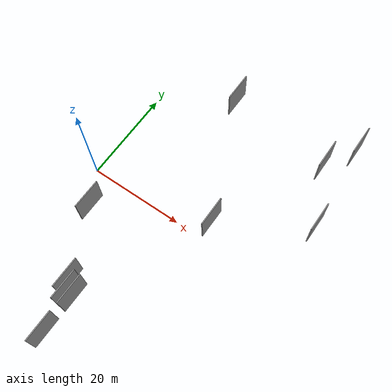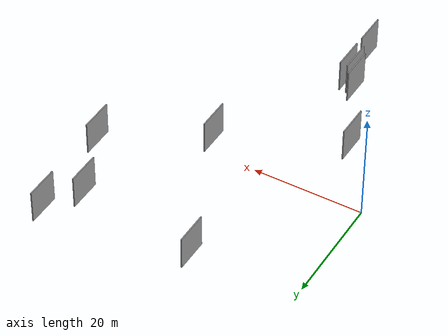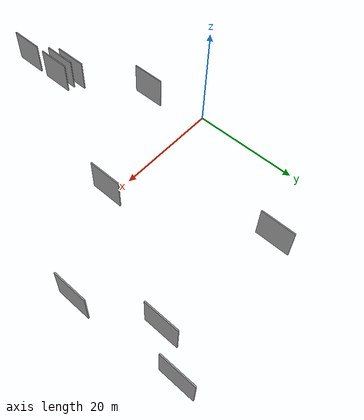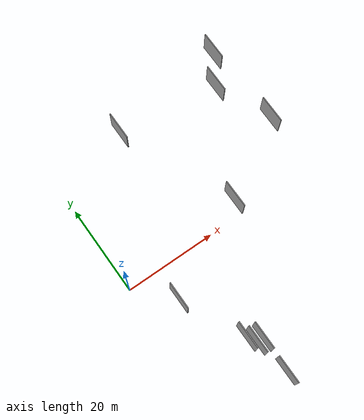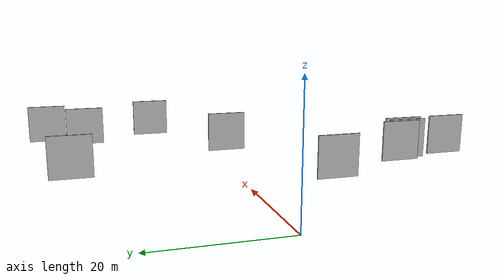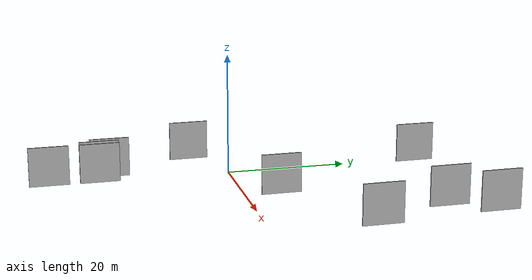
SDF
<sdf version="1.6">
 <world name="default">
  <scene>
   <sky><clouds><speed>12</speed></clouds></sky>
   <ambient>0.4 0.4 0.4 1</ambient>
   <background>0.7 0.7 0.7 1</background>
   <shadows>1</shadows>
  </scene>
  <gravity>0 0 -9.8066</gravity>
  <magnetic_field>6e-06 2.3e-05 -4.2e-05</magnetic_field>
  <physics default="0" name="default_physics" type="ode">
   <ode>
    <solver>
     <type>quick</type>
     <iters>10</iters>
     <sor>1.0</sor>
     <use_dynamic_moi_rescaling>0</use_dynamic_moi_rescaling>
    </solver>
    <constraints>
     <cfm>0</cfm>
     <erp>0.2</erp>
     <contact_max_correcting_vel>100</contact_max_correcting_vel>
     <contact_surface_layer>0.001</contact_surface_layer>
    </constraints>
   </ode>
   <max_step_size>0.004</max_step_size>
   <real_time_factor>1</real_time_factor>
   <real_time_update_rate>250</real_time_update_rate>
  </physics>
  <light name="sun" type="directional">
   <pose>0 0 10 0 0 0</pose>
   <diffuse>0.8 0.8 0.8 1</diffuse>
   <specular>0.2 0.2 0.2 1</specular>
   <attenuation>
    <range>1000</range>
    <constant>0.9</constant>
    <linear>0.01</linear>
    <quadratic>0.001</quadratic>
   </attenuation>
   <direction>-0.5 0.1 -0.9</direction>
  </light>
  <model name="grey_wall_1">
   <static>1</static>
   <pose>37.9035 23.8462 5.0 0.000000 0.000000 1.570796</pose>
   <link name="link">
    <pose>0 0 3.00 0 0 0</pose>
    <collision name="collision"><geometry><box><size>6.00 0.2 6.00</size></box></geometry></collision>
    <visual name="visual">
     <cast_shadows>0</cast_shadows>
     <geometry><box><size>6.00 0.2 6.00</size></box></geometry>
     <material>
      <script>
       <uri>model://grey_wall/materials/scripts</uri>
       <uri>model://grey_wall/materials/textures</uri>
       <name>vrc/grey_wall</name>
      </script>
     </material>
    </visual>
   </link>
  </model>
  <model name="grey_wall_2">
   <static>1</static>
   <pose>15.1365 -23.0238 5.0 0.000000 0.000000 1.570796</pose>
   <link name="link">
    <pose>0 0 3.00 0 0 0</pose>
    <collision name="collision"><geometry><box><size>6.00 0.2 6.00</size></box></geometry></collision>
    <visual name="visual">
     <cast_shadows>0</cast_shadows>
     <geometry><box><size>6.00 0.2 6.00</size></box></geometry>
     <material>
      <script>
       <uri>model://grey_wall/materials/scripts</uri>
       <uri>model://grey_wall/materials/textures</uri>
       <name>vrc/grey_wall</name>
      </script>
     </material>
    </visual>
   </link>
  </model>
  <model name="grey_wall_3">
   <static>1</static>
   <pose>13.7715 -22.9234 5.0 0.000000 0.000000 1.570796</pose>
   <link name="link">
    <pose>0 0 3.00 0 0 0</pose>
    <collision name="collision"><geometry><box><size>6.00 0.2 6.00</size></box></geometry></collision>
    <visual name="visual">
     <cast_shadows>0</cast_shadows>
     <geometry><box><size>6.00 0.2 6.00</size></box></geometry>
     <material>
      <script>
       <uri>model://grey_wall/materials/scripts</uri>
       <uri>model://grey_wall/materials/textures</uri>
       <name>vrc/grey_wall</name>
      </script>
     </material>
    </visual>
   </link>
  </model>
  <model name="grey_wall_4">
   <static>1</static>
   <pose>26.8042 2.0582 5.0 0.000000 0.000000 1.570796</pose>
   <link name="link">
    <pose>0 0 3.00 0 0 0</pose>
    <collision name="collision"><geometry><box><size>6.00 0.2 6.00</size></box></geometry></collision>
    <visual name="visual">
     <cast_shadows>0</cast_shadows>
     <geometry><box><size>6.00 0.2 6.00</size></box></geometry>
     <material>
      <script>
       <uri>model://grey_wall/materials/scripts</uri>
       <uri>model://grey_wall/materials/textures</uri>
       <name>vrc/grey_wall</name>
      </script>
     </material>
    </visual>
   </link>
  </model>
  <model name="grey_wall_5">
   <static>1</static>
   <pose>16.1083 26.7074 5.0 0.000000 0.000000 1.570796</pose>
   <link name="link">
    <pose>0 0 3.00 0 0 0</pose>
    <collision name="collision"><geometry><box><size>6.00 0.2 6.00</size></box></geometry></collision>
    <visual name="visual">
     <cast_shadows>0</cast_shadows>
     <geometry><box><size>6.00 0.2 6.00</size></box></geometry>
     <material>
      <script>
       <uri>model://grey_wall/materials/scripts</uri>
       <uri>model://grey_wall/materials/textures</uri>
       <name>vrc/grey_wall</name>
      </script>
     </material>
    </visual>
   </link>
  </model>
  <model name="grey_wall_6">
   <static>1</static>
   <pose>6.4219 -7.9276 5.0 0.000000 0.000000 1.570796</pose>
   <link name="link">
    <pose>0 0 3.00 0 0 0</pose>
    <collision name="collision"><geometry><box><size>6.00 0.2 6.00</size></box></geometry></collision>
    <visual name="visual">
     <cast_shadows>0</cast_shadows>
     <geometry><box><size>6.00 0.2 6.00</size></box></geometry>
     <material>
      <script>
       <uri>model://grey_wall/materials/scripts</uri>
       <uri>model://grey_wall/materials/textures</uri>
       <name>vrc/grey_wall</name>
      </script>
     </material>
    </visual>
   </link>
  </model>
  <model name="grey_wall_7">
   <static>1</static>
   <pose>41.7002 29.9739 5.0 0.000000 0.000000 1.570796</pose>
   <link name="link">
    <pose>0 0 3.00 0 0 0</pose>
    <collision name="collision"><geometry><box><size>6.00 0.2 6.00</size></box></geometry></collision>
    <visual name="visual">
     <cast_shadows>0</cast_shadows>
     <geometry><box><size>6.00 0.2 6.00</size></box></geometry>
     <material>
      <script>
       <uri>model://grey_wall/materials/scripts</uri>
       <uri>model://grey_wall/materials/textures</uri>
       <name>vrc/grey_wall</name>
      </script>
     </material>
    </visual>
   </link>
  </model>
  <model name="grey_wall_8">
   <static>1</static>
   <pose>12.6841 -21.2575 5.0 0.000000 0.000000 1.570796</pose>
   <link name="link">
    <pose>0 0 3.00 0 0 0</pose>
    <collision name="collision"><geometry><box><size>6.00 0.2 6.00</size></box></geometry></collision>
    <visual name="visual">
     <cast_shadows>0</cast_shadows>
     <geometry><box><size>6.00 0.2 6.00</size></box></geometry>
     <material>
      <script>
       <uri>model://grey_wall/materials/scripts</uri>
       <uri>model://grey_wall/materials/textures</uri>
       <name>vrc/grey_wall</name>
      </script>
     </material>
    </visual>
   </link>
  </model>
  <model name="grey_wall_9">
   <static>1</static>
   <pose>43.1214 12.0380 5.0 0.000000 0.000000 1.570796</pose>
   <link name="link">
    <pose>0 0 3.00 0 0 0</pose>
    <collision name="collision"><geometry><box><size>6.00 0.2 6.00</size></box></geometry></collision>
    <visual name="visual">
     <cast_shadows>0</cast_shadows>
     <geometry><box><size>6.00 0.2 6.00</size></box></geometry>
     <material>
      <script>
       <uri>model://grey_wall/materials/scripts</uri>
       <uri>model://grey_wall/materials/textures</uri>
       <name>vrc/grey_wall</name>
      </script>
     </material>
    </visual>
   </link>
  </model>
  <model name="grey_wall_10">
   <static>1</static>
   <pose>15.0569 -30.5796 5.0 0.000000 0.000000 1.570796</pose>
   <link name="link">
    <pose>0 0 3.00 0 0 0</pose>
    <collision name="collision"><geometry><box><size>6.00 0.2 6.00</size></box></geometry></collision>
    <visual name="visual">
     <cast_shadows>0</cast_shadows>
     <geometry><box><size>6.00 0.2 6.00</size></box></geometry>
     <material>
      <script>
       <uri>model://grey_wall/materials/scripts</uri>
       <uri>model://grey_wall/materials/textures</uri>
       <name>vrc/grey_wall</name>
      </script>
     </material>
    </visual>
   </link>
  </model>
 </world>
</sdf>
